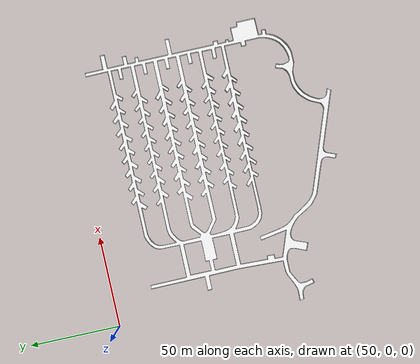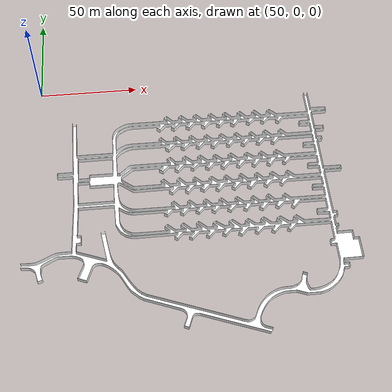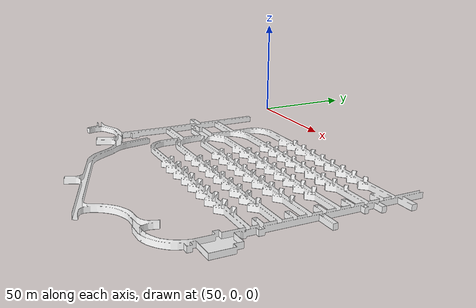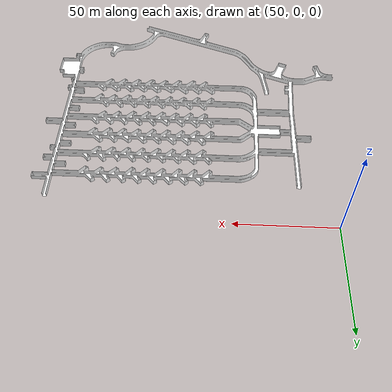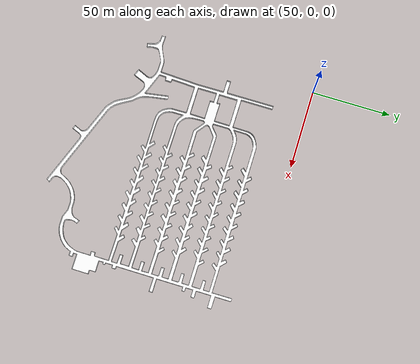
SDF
<sdf version="1.7">
  <world name="world">
    <scene>
      <ambient>0.8 0.8 0.8 1.0</ambient>
      <background>0 0 0</background>
      <grid>false</grid>
    </scene>
    <include>
      <uri>model://sun</uri>
    </include>
    <gui>
      <camera name="gui_camera">
        <pose>121.0836205074881 -97.1497359501486 10 0 0.6 1.57</pose>
      </camera>
      <plugin name="toggle_charging" filename="libtoggle_charging.so" />
      <plugin name="toggle_floors" filename="libtoggle_floors.so">
        <floor name="L1" model_name="mina_1_L1" />
      </plugin>
    </gui>
    <include>
      <name>mina_1_L1</name>
      <uri>model://mina_1_L1</uri>
      <pose>0 0 0.0 0 0 0</pose>
    </include>
    <rmf_charger_waypoints name="charger_waypoints" />
  </world>
</sdf>

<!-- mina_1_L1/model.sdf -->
<sdf version="1.7">
  <model name="mina_1_L1">
    <static>true</static>
    <link name="floor_1">
      <visual name="visual">
        <geometry>
          <mesh>
            <uri>model://mina_1_L1/meshes/floor_1.obj</uri>
          </mesh>
        </geometry>
        <material>
          <diffuse>1.0 1.0 1.0</diffuse>
          <specular>0.1 0.1 0.1</specular>
          <pbr>
            <metal>
              <metalness>0.0</metalness>
              <albedo_map>model://mina_1_L1/meshes/blue_linoleum.png</albedo_map>
            </metal>
          </pbr>
          <script>
            <uri>model://mina_1_L1/meshes/</uri>
            <name>floor_1_Diffuse</name>
          </script>
        </material>
      </visual>
      <collision name="collision">
        <geometry>
          <mesh>
            <uri>model://mina_1_L1/meshes/floor_1.obj</uri>
          </mesh>
        </geometry>
        <surface>
          <contact>
            <collide_bitmask>0x01</collide_bitmask>
          </contact>
        </surface>
      </collision>
    </link>
    <link name="wall_1">
      <visual name="wall_1">
        <geometry>
          <mesh>
            <uri>model://mina_1_L1/meshes/wall_1.obj</uri>
          </mesh>
        </geometry>
        <transparency>0.0</transparency>
        <material>
          <diffuse>1.0 1.0 1.0</diffuse>
          <specular>0.1 0.1 0.1</specular>
          <pbr>
            <metal>
              <metalness>0.0</metalness>
              <albedo_map>model://mina_1_L1/meshes/default.png</albedo_map>
            </metal>
          </pbr>
          <script>
            <uri>model://mina_1_L1/meshes/</uri>
            <name>wall_1_Diffuse</name>
          </script>
        </material>
      </visual>
      <collision name="collision">
        <geometry>
          <mesh>
            <uri>model://mina_1_L1/meshes/wall_1.obj</uri>
          </mesh>
        </geometry>
        <surface>
          <contact>
            <collide_bitmask>0x01</collide_bitmask>
          </contact>
        </surface>
      </collision>
      <pose>42.097716574249 -142.70762385272403 0 0 0 0</pose>
    </link>
  </model>
</sdf>
